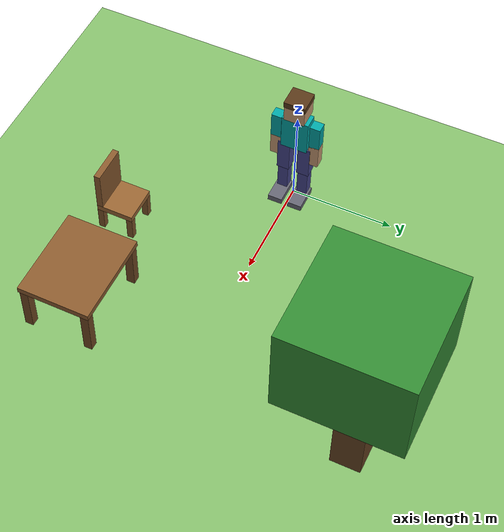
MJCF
<mujoco model="minecraft_world">
  <compiler angle="degree" inertiafromgeom="true"/>
  <option timestep="0.005" iterations="20" integrator="Euler"/>

  <default>
    <joint armature="0.02" damping="2" limited="true"/>
    <geom type="box" friction="1 0.1 0.1" density="250"/>
    <motor ctrllimited="true" ctrlrange="-1 1" gear="80"/>
  </default>

  <asset>
    <texture type="skybox" builtin="gradient" rgb1="0.5 0.6 0.8" rgb2="0.1 0.15 0.3" width="256" height="256"/>
    <texture name="grid" type="2d" builtin="checker" rgb1="0.45 0.7 0.35" rgb2="0.6 0.8 0.5" width="300" height="300"/>
    <material name="grid" texture="grid" texrepeat="10 10" reflectance="0.05"/>
  </asset>

  <worldbody>
    <light pos="2 -2 5" dir="-0.3 0.3 -1" diffuse="0.9 0.9 0.9"/>
    <geom name="floor" type="plane" size="25 25 0.1" material="grid"/>

    <!-- ===== real cubic objects (Minecraft style) ===== -->
    <!-- tree: brown trunk + cubic green leaves -->
    <geom name="tree_trunk" type="box" size="0.14 0.14 0.7" pos="2.4 1.6 0.7" rgba="0.40 0.26 0.13 1"/>
    <geom name="tree_leaves" type="box" size="0.55 0.55 0.45" pos="2.4 1.6 1.7" rgba="0.20 0.55 0.20 1"/>

    <!-- table: brown top + 4 legs -->
    <geom name="table_top" type="box" size="0.45 0.35 0.03" pos="2.0 -1.2 0.5" rgba="0.55 0.36 0.18 1"/>
    <geom name="table_l1" type="box" size="0.04 0.04 0.235" pos="1.6 -0.9 0.235" rgba="0.45 0.29 0.14 1"/>
    <geom name="table_l2" type="box" size="0.04 0.04 0.235" pos="2.4 -0.9 0.235" rgba="0.45 0.29 0.14 1"/>
    <geom name="table_l3" type="box" size="0.04 0.04 0.235" pos="1.6 -1.5 0.235" rgba="0.45 0.29 0.14 1"/>
    <geom name="table_l4" type="box" size="0.04 0.04 0.235" pos="2.4 -1.5 0.235" rgba="0.45 0.29 0.14 1"/>

    <!-- chair: seat + backrest + 4 legs -->
    <geom name="chair_seat" type="box" size="0.18 0.18 0.03" pos="1.0 -1.3 0.27" rgba="0.60 0.40 0.20 1"/>
    <geom name="chair_back" type="box" size="0.18 0.03 0.22" pos="1.0 -1.45 0.49" rgba="0.55 0.36 0.18 1"/>
    <geom name="chair_l1" type="box" size="0.03 0.03 0.135" pos="0.85 -1.15 0.135" rgba="0.50 0.33 0.16 1"/>
    <geom name="chair_l2" type="box" size="0.03 0.03 0.135" pos="1.15 -1.15 0.135" rgba="0.50 0.33 0.16 1"/>
    <geom name="chair_l3" type="box" size="0.03 0.03 0.135" pos="0.85 -1.45 0.135" rgba="0.50 0.33 0.16 1"/>
    <geom name="chair_l4" type="box" size="0.03 0.03 0.135" pos="1.15 -1.45 0.135" rgba="0.50 0.33 0.16 1"/>

    <!-- ===== blocky Steve character (3D, free joint) ===== -->
    <body name="torso" pos="0 0 0.86">
      <freejoint name="root"/>
      <geom name="torso" size="0.07 0.13 0.18" pos="0 0 0" rgba="0.0 0.66 0.66 1"/>
      <geom name="head" size="0.10 0.10 0.10" pos="0 0 0.30" rgba="0.80 0.62 0.46 1"/>
      <geom name="hair" size="0.105 0.105 0.03" pos="0 0 0.39" rgba="0.35 0.22 0.10 1"/>

      <body name="upper_arm_r" pos="0 0.19 0.12">
        <joint name="shoulder_r" type="hinge" axis="0 1 0" range="-90 90"/>
        <geom size="0.05 0.05 0.13" pos="0 0 -0.10" rgba="0.0 0.66 0.66 1"/>
        <body name="lower_arm_r" pos="0 0 -0.24">
          <joint name="elbow_r" type="hinge" axis="0 1 0" range="-130 0"/>
          <geom size="0.05 0.05 0.12" pos="0 0 -0.10" rgba="0.80 0.62 0.46 1"/>
        </body>
      </body>
      <body name="upper_arm_l" pos="0 -0.19 0.12">
        <joint name="shoulder_l" type="hinge" axis="0 1 0" range="-90 90"/>
        <geom size="0.05 0.05 0.13" pos="0 0 -0.10" rgba="0.0 0.66 0.66 1"/>
        <body name="lower_arm_l" pos="0 0 -0.24">
          <joint name="elbow_l" type="hinge" axis="0 1 0" range="-130 0"/>
          <geom size="0.05 0.05 0.12" pos="0 0 -0.10" rgba="0.80 0.62 0.46 1"/>
        </body>
      </body>

      <body name="thigh_r" pos="0 0.10 -0.18">
        <joint name="hip_x_r" type="hinge" axis="1 0 0" range="-30 30"/>
        <joint name="hip_y_r" type="hinge" axis="0 1 0" range="-90 50"/>
        <geom size="0.06 0.06 0.17" pos="0 0 -0.15" rgba="0.27 0.27 0.55 1"/>
        <body name="shin_r" pos="0 0 -0.32">
          <joint name="knee_r" type="hinge" axis="0 1 0" range="0 90"/>
          <geom size="0.05 0.05 0.16" pos="0 0 -0.14" rgba="0.27 0.27 0.55 1"/>
          <body name="foot_r" pos="0.04 0 -0.30">
            <joint name="ankle_r" type="hinge" axis="0 1 0" range="-50 50"/>
            <geom size="0.13 0.07 0.03" pos="0.05 0 0" rgba="0.4 0.4 0.45 1"/>
          </body>
        </body>
      </body>
      <body name="thigh_l" pos="0 -0.10 -0.18">
        <joint name="hip_x_l" type="hinge" axis="1 0 0" range="-30 30"/>
        <joint name="hip_y_l" type="hinge" axis="0 1 0" range="-90 50"/>
        <geom size="0.06 0.06 0.17" pos="0 0 -0.15" rgba="0.27 0.27 0.55 1"/>
        <body name="shin_l" pos="0 0 -0.32">
          <joint name="knee_l" type="hinge" axis="0 1 0" range="0 90"/>
          <geom size="0.05 0.05 0.16" pos="0 0 -0.14" rgba="0.27 0.27 0.55 1"/>
          <body name="foot_l" pos="0.04 0 -0.30">
            <joint name="ankle_l" type="hinge" axis="0 1 0" range="-50 50"/>
            <geom size="0.13 0.07 0.03" pos="0.05 0 0" rgba="0.4 0.4 0.45 1"/>
          </body>
        </body>
      </body>
    </body>
  </worldbody>

  <actuator>
    <motor joint="hip_y_r"/>
    <motor joint="hip_x_r"/>
    <motor joint="knee_r"/>
    <motor joint="ankle_r" gear="40"/>
    <motor joint="hip_y_l"/>
    <motor joint="hip_x_l"/>
    <motor joint="knee_l"/>
    <motor joint="ankle_l" gear="40"/>
    <motor joint="shoulder_r" gear="30"/>
    <motor joint="shoulder_l" gear="30"/>
    <motor joint="elbow_r" gear="18"/>
    <motor joint="elbow_l" gear="18"/>
  </actuator>
</mujoco>
